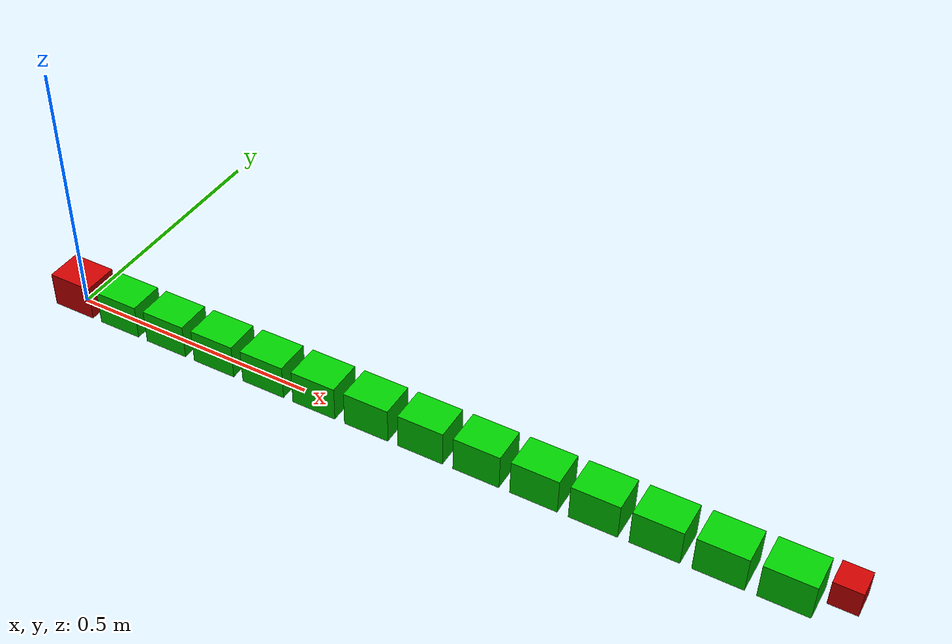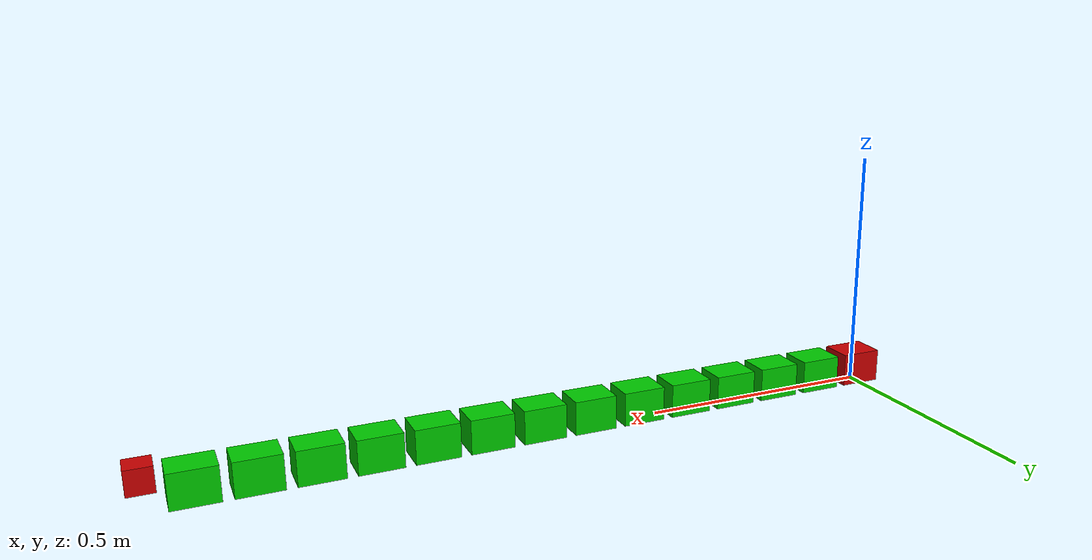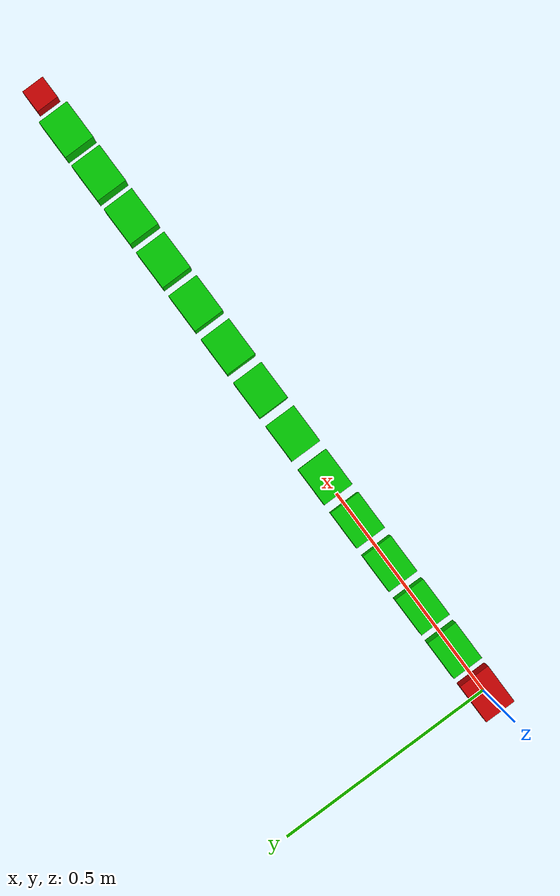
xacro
<?xml version="1.0"?>
<robot name="snakebot" xmlns:xacro="http://www.ros.org/wiki/xacro">
        <!-- Put here the robot description -->

	<xacro:property name="camera_link" value="0.05" /> <!-- Size of square 'camera' box -->
	<xacro:property name="height" value="1" /> <!-- Link -->
  <xacro:property name="axel_offset" value="0.05" /> <!-- Space btw top of beam and the each joint -->

	<xacro:property name="PI" value="3.1415926535897931"/>

	<xacro:property name="chassisHeight" value="0.07"/><!--Simulation:0.1 Real robot: 0.07-->
	<xacro:property name="chassisLength" value="0.0885"/><!--Simulation: 0.2 Real robot: 0.0885-->
	<xacro:property name="chassisWidth" value="0.07"/><!--Simulation: 0.1 Real robot: 0.07-->
	<xacro:property name="chassisMass" value="1"/>
	<xacro:property name="jointOffset" value="0.01"/> <!--Simulation: 0.03 Real robot: 0.01-->

	<xacro:property name="casterRadius" value="0.05"/>
	<xacro:property name="casterMass" value="5"/>

	<xacro:property name="wheelWidth" value="0.05"/>
	<xacro:property name="wheelRadius" value="0.1"/>
	<xacro:property name="wheelPos" value="0.2"/>
	<xacro:property name="wheelMass" value="5"/>

	<xacro:property name="cameraSize" value="0.05"/>
	<xacro:property name="cameraMass" value="0.1"/>

	<xacro:include filename="$(find snakebot_description)/urdf/snakebot.gazebo" />
	<xacro:include filename="$(find snakebot_description)/urdf/materials.xacro" />
	<xacro:include filename="$(find snakebot_description)/urdf/macros.xacro" />

	<link name="dummy_link" />

	<joint name="base_joint" type="fixed">
		<parent link="dummy_link"/>
		<child link="body_01"/>
	</joint>

  <body_first num="1" nextNum="2"/>
    <body_upTo9 num="2" nextNum="3"/>
    <body_upTo9 num="3" nextNum="4"/>
    <body_upTo9 num="4" nextNum="5"/>
    <body_upTo9 num="5" nextNum="6"/>
    <body_upTo9 num="6" nextNum="7"/>
    <body_upTo9 num="7" nextNum="8"/>
    <body_upTo9 num="8" nextNum="9"/>
    <body_9 num="9" nextNum="10"/>
    <body_above9 num="10" nextNum="11"/>
    <body_above9 num="11" nextNum="12"/>
    <body_above9 num="12" nextNum="13"/>
    <body_above9 num="13" nextNum="14"/>
    <body_last_above9 num="14"/>

  <joint name="camera_joint" type="fixed">
    <origin xyz="${camera_link+chassisLength} 0 ${0.5*camera_link}" rpy="0 0 0"/>
    <parent link="body_14"/>
    <child link="camera_link"/>
  </joint>

  <!-- Camera -->
  <link name="camera_link">
    <collision>
      <origin xyz="0 0 0" rpy="0 0 0"/>
      <geometry>
    <box size="${camera_link} ${camera_link} ${camera_link}"/>
      </geometry>
    </collision>

    <visual>
      <origin xyz="0 0 0" rpy="0 0 0"/>
      <geometry>
    <box size="${camera_link} ${camera_link} ${camera_link}"/>
      </geometry>
      <material name="red"/>
    </visual>

    <inertial>
      <mass value="1e-5" />
      <origin xyz="0 0 0" rpy="0 0 0"/>
      <inertia ixx="1e-6" ixy="0" ixz="0" iyy="1e-6" iyz="0" izz="1e-6" />
    </inertial>
  </link>

</robot>

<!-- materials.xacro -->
<robot name="snakebot" xmlns:xacro="http://www.ros.org/wiki/xacro">
        <!-- Put here the robot description -->

	<material name="black">
		<color rgba="0.0 0.0 0.0 1.0"/>
	</material>

	<material name="blue">
		<color rgba="0.0 0.0 0.8 1.0"/>
	</material>

	<material name="green">
		<color rgba="0.0 0.8 0.0 1.0"/>
	</material>

	<material name="grey">
		<color rgba="0.2 0.2 0.2 1.0"/>
	</material>

	<material name="orange">
		<color rgba="${255/255} ${108/255} ${10/255} 1.0"/>
	</material>

	<material name="brown">
		<color rgba="${222/255} ${207/255} ${195/255} 1.0"/>
	</material>

	<material name="red">
		<color rgba="0.8 0.0 0.0 1.0"/>
	</material>

	<material name="white">
		<color rgba="1.0 1.0 1.0 1.0"/>
	</material>

</robot>

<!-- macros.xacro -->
<robot name="snakebot" xmlns:xacro="http://www.ros.org/wiki/xacro">
        <!-- Put here the robot description -->

	<macro name="cylinder_inertia" params="m r h">
		<inertia  ixx="${m*(3*r*r+h*h)/12}" ixy = "0" ixz = "0"
		  iyy="${m*(3*r*r+h*h)/12}" iyz = "0"
		  izz="${m*r*r/2}"
		/>
	</macro>

	<macro name="box_inertia" params="m x y z">
		<inertia  ixx="${m*(y*y+z*z)/12}" ixy = "0" ixz = "0"
		  iyy="${m*(x*x+z*z)/12}" iyz = "0"
		  izz="${m*(x*x+z*z)/12}"
		/>
	</macro>

	<macro name="sphere_inertia" params="m r">
		<inertia  ixx="${2*m*r*r/5}" ixy = "0" ixz = "0"
		  iyy="${2*m*r*r/5}" iyz = "0"
		  izz="${2*m*r*r/5}"
		/>
	</macro>

	<macro name="body_first" params="num nextNum">
		<link name='body_0${num}'>
		<collision>
		  <origin xyz="0 0 ${chassisHeight/2}" rpy="0 0 0"/>
		  <geometry>
		    <box size="${chassisLength} ${chassisWidth} ${chassisHeight}"/>
		  </geometry>
		</collision>
		<visual>
		  <origin xyz="0 0 ${chassisHeight/2}" rpy="0 0 0"/>
		  <geometry>
		    <box size="${chassisLength} ${chassisWidth} ${chassisHeight}"/>
		  </geometry>
		  <material name="red"/>
		</visual>
		<inertial>
		  <origin xyz="0 0 ${chassisHeight/2}" rpy="0 0 0"/>
    	<mass value="${chassisMass}"/>
    	<box_inertia m="${chassisMass}" x="${chassisLength}" y="${chassisWidth}" z="${chassisHeight}"/>
  	</inertial>
	</link>

	<gazebo reference="body_0${num}">
		<self_collide>true</self_collide>
		<mu1>0.01</mu1>
  	<mu2>1.0</mu2>
		<fdir1>1 0 0</fdir1>
  	<material>Gazebo/Orange</material>

		<sensor name="body_0${num}_bumper" type="contact">
			<always_on>true</always_on>
	    <update_rate>30</update_rate>
	    <contact>
	      <collision>body_0${num}_collision</collision>
	    </contact>
			<plugin filename="libgazebo_ros_bumper.so" name="bumper_plugin_0${num}">
				<bumperTopicName>bumper_0${num}</bumperTopicName>
				<frameName>body_0${num}</frameName>
			</plugin>
		</sensor>
	</gazebo>

	<gazebo>
		<plugin name="gazebo_ros_control" filename="libgazebo_ros_control.so">
		  <robotNamespace>/snakebot</robotNamespace>
		</plugin>
	</gazebo>

	<joint name="joint_0${num}" type="continuous">
		<parent link="body_0${num}"/>
		<child link="body_0${nextNum}"/>
		<origin xyz="${chassisLength/2 + jointOffset} 0 ${chassisHeight/2}" rpy="0 0 0" />
	 	<axis xyz="0 0 1" rpy="0 0 0" />
		<limit effort="100" velocity="1"/>
		<joint_properties damping="100.0" friction="0.0"/>
	</joint>

	<transmission name="trans_0${num}">
		<type>transmission_interface/SimpleTransmission</type>
		<joint name="joint_0${num}">
			<hardwareInterface>EffortJointInterface</hardwareInterface>
		</joint>
		<actuator name="motor_0${num}">
		  <hardwareInterface>EffortJointInterface</hardwareInterface>
		  <mechanicalReduction>10</mechanicalReduction>
		</actuator>
	</transmission>

	</macro>

	<macro name="body_upTo9" params="num nextNum">

	<link name="body_0${num}">
		<collision>
		  <origin xyz="${chassisLength/2 + jointOffset} 0 0" rpy="0 0 0"/>
		  <geometry>
		    <box size="${chassisLength} ${chassisWidth} ${chassisHeight}"/>
		  </geometry>
		</collision>
		<visual>
		  <origin xyz="${chassisLength/2 + jointOffset} 0 0" rpy="0 0 0"/>
		  <geometry>
		    <box size="${chassisLength} ${chassisWidth} ${chassisHeight}"/>
		  </geometry>
		  <material name="green"/>
		</visual>
		<inertial>
		  <origin xyz="${chassisLength/2 + jointOffset} 0 0" rpy="0 0 0"/>
    	<mass value="${chassisMass}"/>
    	<box_inertia m="${chassisMass}" x="${chassisLength}" y="${chassisWidth}" z="${chassisHeight}"/>
  	</inertial>
	</link>

	<gazebo reference="body_0${num}">
  	<mu1 value="0.3"/>
  	<mu2 value="0.3"/>
  	<kp  value="10000000.0" />
  	<kd  value="1.0" />
  	<fdir1 value="1 0 0"/>
  	<material>Gazebo/Orange</material>

  	<sensor name="body_0${num}_bumper" type="contact">
			<always_on>true</always_on>
	    <update_rate>30</update_rate>
	    <contact>
	      <collision>body_0${num}_collision</collision>
	    </contact>
			<plugin filename="libgazebo_ros_bumper.so" name="bumper_plugin_0${num}">
				<bumperTopicName>bumper_0${num}</bumperTopicName>
				<frameName>body_0${num}</frameName>
			</plugin>
		</sensor>
	</gazebo>

	<joint name="joint_0${num}" type="continuous">
		<parent link="body_0${num}"/>
		<child link="body_0${nextNum}"/>
		<origin xyz="${chassisLength+2*jointOffset} 0 0" rpy="0 0 0" />
	 	<axis xyz="0 0 1" rpy="0 0 0" />
		<limit effort="100" velocity="1"/>
		<joint_properties damping="100.0" friction="0.0"/>
	</joint>

	<transmission name="trans_0${num}">
		<type>transmission_interface/SimpleTransmission</type>
		<joint name="joint_0${num}">
			<hardwareInterface>EffortJointInterface</hardwareInterface>
		</joint>
		<actuator name="motor_0${num}">
		  <hardwareInterface>EffortJointInterface</hardwareInterface>
		  <mechanicalReduction>10</mechanicalReduction>
		</actuator>
	</transmission>

	</macro>

		<macro name="body_9" params="num nextNum">

	<link name="body_0${num}">
		<collision>
		  <origin xyz="${chassisLength/2 + jointOffset} 0 0" rpy="0 0 0"/>
		  <geometry>
		    <box size="${chassisLength} ${chassisWidth} ${chassisHeight}"/>
		  </geometry>
		</collision>
		<visual>
		  <origin xyz="${chassisLength/2 + jointOffset} 0 0" rpy="0 0 0"/>
		  <geometry>
		    <box size="${chassisLength} ${chassisWidth} ${chassisHeight}"/>
		  </geometry>
		  <material name="green"/>
		</visual>
		<inertial>
		  <origin xyz="${chassisLength/2 + jointOffset} 0 0" rpy="0 0 0"/>
    	<mass value="${chassisMass}"/>
    	<box_inertia m="${chassisMass}" x="${chassisLength}" y="${chassisWidth}" z="${chassisHeight}"/>
  	</inertial>
	</link>

	<gazebo reference="body_0${num}">
  	<mu1 value="0.3"/>
  	<mu2 value="0.3"/>
  	<kp  value="10000000.0" />
  	<kd  value="1.0" />
  	<fdir1 value="1 0 0"/>
  	<material>Gazebo/Orange</material>

  	<sensor name="body_0${num}_bumper" type="contact">
			<always_on>true</always_on>
	    <update_rate>30</update_rate>
	    <contact>
	      <collision>body_0${num}_collision</collision>
	    </contact>
			<plugin filename="libgazebo_ros_bumper.so" name="bumper_plugin_0${num}">
				<bumperTopicName>bumper_0${num}</bumperTopicName>
				<frameName>body_0${num}</frameName>
			</plugin>
		</sensor>
	</gazebo>

	<joint name="joint_0${num}" type="continuous">
		<parent link="body_0${num}"/>
		<child link="body_${nextNum}"/>
		<origin xyz="${chassisLength+2*jointOffset} 0 0" rpy="0 0 0" />
	 	<axis xyz="0 0 1" rpy="0 0 0" />
		<limit effort="100" velocity="1"/>
		<joint_properties damping="100.0" friction="0.0"/>
	</joint>

	<transmission name="trans_0${num}">
		<type>transmission_interface/SimpleTransmission</type>
		<joint name="joint_0${num}">
			<hardwareInterface>EffortJointInterface</hardwareInterface>
		</joint>
		<actuator name="motor_0${num}">
		  <hardwareInterface>EffortJointInterface</hardwareInterface>
		  <mechanicalReduction>10</mechanicalReduction>
		</actuator>
	</transmission>

	</macro>

	<macro name="body_last_upTo9" params="num">

	<link name="body_0${num}">
		<collision>
		  <origin xyz="${chassisLength/2 + jointOffset} 0 0" rpy="0 0 0"/>
		  <geometry>
		    <box size="${chassisLength} ${chassisWidth} ${chassisHeight}"/>
		  </geometry>
		</collision>
		<visual>
		  <origin xyz="${chassisLength/2 + jointOffset} 0 0" rpy="0 0 0"/>
		  <geometry>
		    <box size="${chassisLength} ${chassisWidth} ${chassisHeight}"/>
		  </geometry>
		  <material name="green"/>
		</visual>
		<inertial>
		  <origin xyz="${chassisLength/2 + jointOffset} 0 0" rpy="0 0 0"/>
    	<mass value="${chassisMass}"/>
    	<box_inertia m="${chassisMass}" x="${chassisLength}" y="${chassisWidth}" z="${chassisHeight}"/>
  	</inertial>
	</link>

	<gazebo reference="body_0${num}">
  	<mu1 value="0.3"/>
  	<mu2 value="0.3"/>
  	<kp  value="10000000.0" />
  	<kd  value="1.0" />
  	<fdir1 value="1 0 0"/>
  	<material>Gazebo/Red</material>

  	<sensor name="body_0${num}_bumper" type="contact">
			<always_on>true</always_on>
	    <update_rate>30</update_rate>
	    <contact>
	      <collision>body_0${num}_collision</collision>
	    </contact>
			<plugin filename="libgazebo_ros_bumper.so" name="bumper_plugin_0${num}">
				<bumperTopicName>bumper_0${num}</bumperTopicName>
				<frameName>body_0${num}</frameName>
			</plugin>
		</sensor>
	</gazebo>

	</macro>

	<macro name="body_above9" params="num nextNum">

	<link name="body_${num}">
		<collision>
		  <origin xyz="${chassisLength/2 + jointOffset} 0 0" rpy="0 0 0"/>
		  <geometry>
		    <box size="${chassisLength} ${chassisWidth} ${chassisHeight}"/>
		  </geometry>
		</collision>
		<visual>
		  <origin xyz="${chassisLength/2 + jointOffset} 0 0" rpy="0 0 0"/>
		  <geometry>
		    <box size="${chassisLength} ${chassisWidth} ${chassisHeight}"/>
		  </geometry>
		  <material name="green"/>
		</visual>
		<inertial>
		  <origin xyz="${chassisLength/2 + jointOffset} 0 0" rpy="0 0 0"/>
    	<mass value="${chassisMass}"/>
    	<box_inertia m="${chassisMass}" x="${chassisLength}" y="${chassisWidth}" z="${chassisHeight}"/>
  	</inertial>
	</link>

	<gazebo reference="body_${num}">
  	<mu1 value="0.3"/>
  	<mu2 value="0.3"/>
  	<kp  value="10000000.0" />
  	<kd  value="1.0" />
  	<fdir1 value="1 0 0"/>
  	<material>Gazebo/Orange</material>

  	<sensor name="body_${num}_bumper" type="contact">
			<always_on>true</always_on>
	    <update_rate>30</update_rate>
	    <contact>
	      <collision>body_${num}_collision</collision>
	    </contact>
			<plugin filename="libgazebo_ros_bumper.so" name="bumper_plugin_${num}">
				<bumperTopicName>bumper_${num}</bumperTopicName>
				<frameName>body_${num}</frameName>
			</plugin>
		</sensor>
	</gazebo>

	<joint name="joint_${num}" type="continuous">
		<parent link="body_${num}"/>
  	<child link="body_${nextNum}"/>
		<origin xyz="${chassisLength+2*jointOffset} 0 0" rpy="0 0 0" />
	 	<axis xyz="0 0 1" rpy="0 0 0" />
		<limit effort="100" velocity="1"/>
		<joint_properties damping="100.0" friction="0.0"/>
	</joint>

	<transmission name="trans_${num}">
		<type>transmission_interface/SimpleTransmission</type>
		<joint name="joint_${num}">
			<hardwareInterface>EffortJointInterface</hardwareInterface>
		</joint>
		<actuator name="motor_${num}">
		  <hardwareInterface>EffortJointInterface</hardwareInterface>
		  <mechanicalReduction>10</mechanicalReduction>
		</actuator>
	</transmission>

	</macro>

	<macro name="body_last_above9" params="num">

	<link name="body_${num}">
		<collision>
		  <origin xyz="${chassisLength/2 + jointOffset} 0 0" rpy="0 0 0"/>
		  <geometry>
		    <box size="${chassisLength} ${chassisWidth} ${chassisHeight}"/>
		  </geometry>
		</collision>
		<visual>
		  <origin xyz="${chassisLength/2 + jointOffset} 0 0" rpy="0 0 0"/>
		  <geometry>
		    <box size="${chassisLength} ${chassisWidth} ${chassisHeight}"/>
		  </geometry>
		  <material name="green"/>
		</visual>
		<inertial>
		  <origin xyz="${chassisLength/2 + jointOffset} 0 0" rpy="0 0 0"/>
    	<mass value="${chassisMass}"/>
    	<box_inertia m="${chassisMass}" x="${chassisLength}" y="${chassisWidth}" z="${chassisHeight}"/>
  	</inertial>
	</link>

	<gazebo reference="body_${num}">
  	<mu1 value="0.3"/>
  	<mu2 value="0.3"/>
  	<kp  value="10000000.0" />
  	<kd  value="1.0" />
  	<fdir1 value="1 0 0"/>
  	<material>Gazebo/Red</material>

  	<sensor name="body_${num}_bumper" type="contact">
			<always_on>true</always_on>
	    <update_rate>30</update_rate>
	    <contact>
	      <collision>body_${num}_collision</collision>
	    </contact>
			<plugin filename="libgazebo_ros_bumper.so" name="bumper_plugin_${num}">
				<bumperTopicName>bumper_${num}</bumperTopicName>
				<frameName>body_${num}</frameName>
			</plugin>
		</sensor>
	</gazebo>

	</macro>

</robot>
